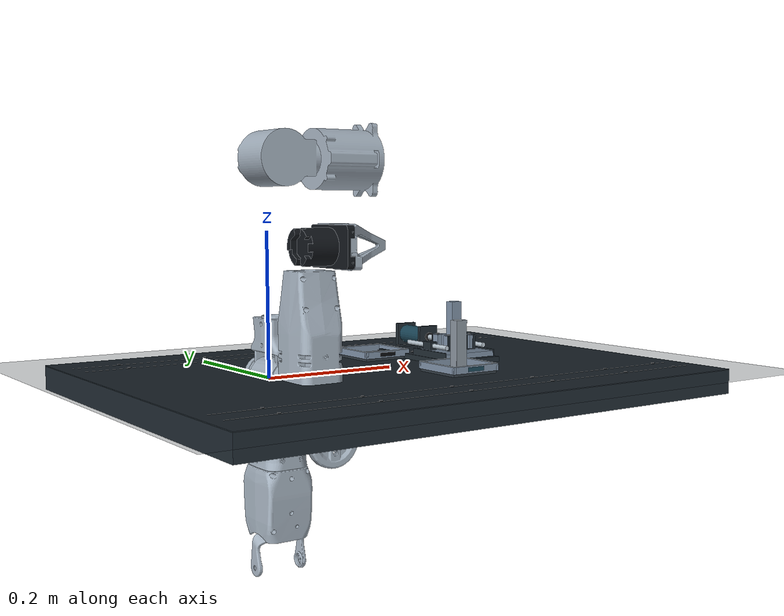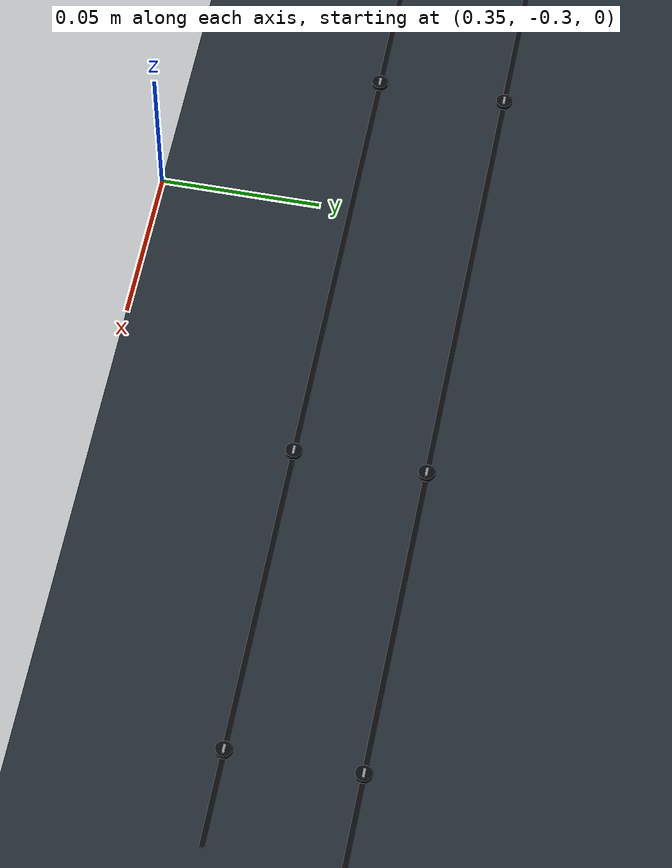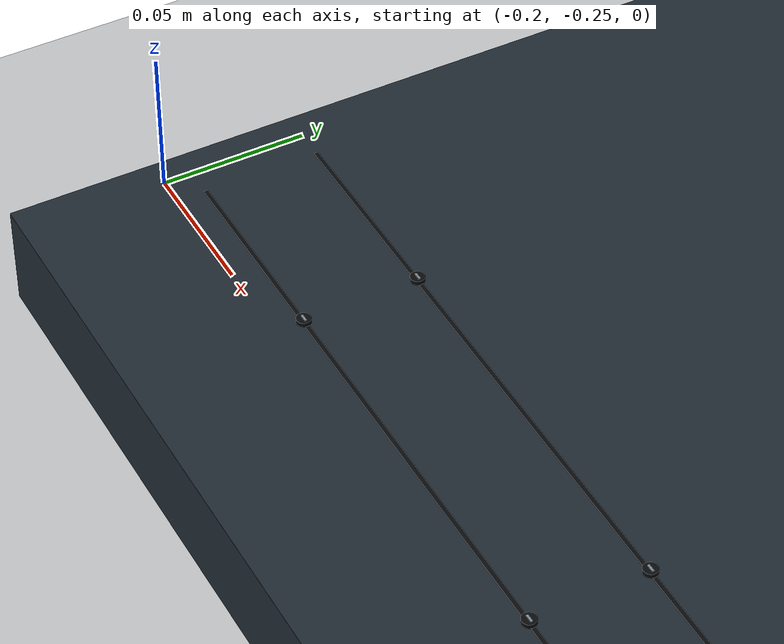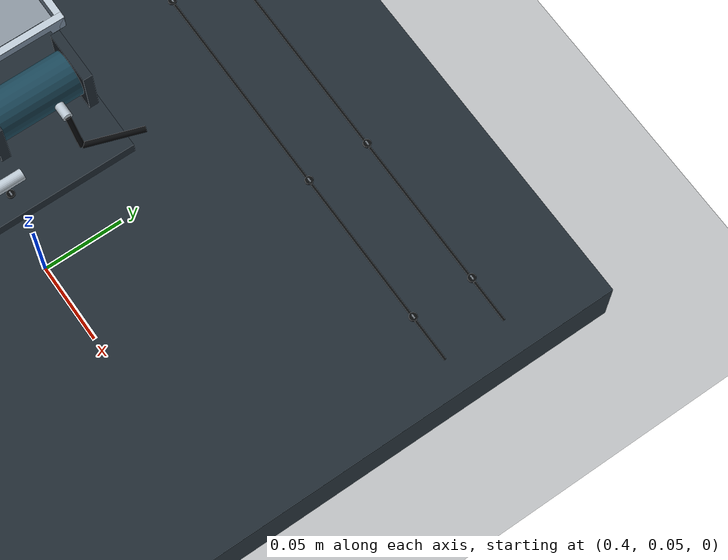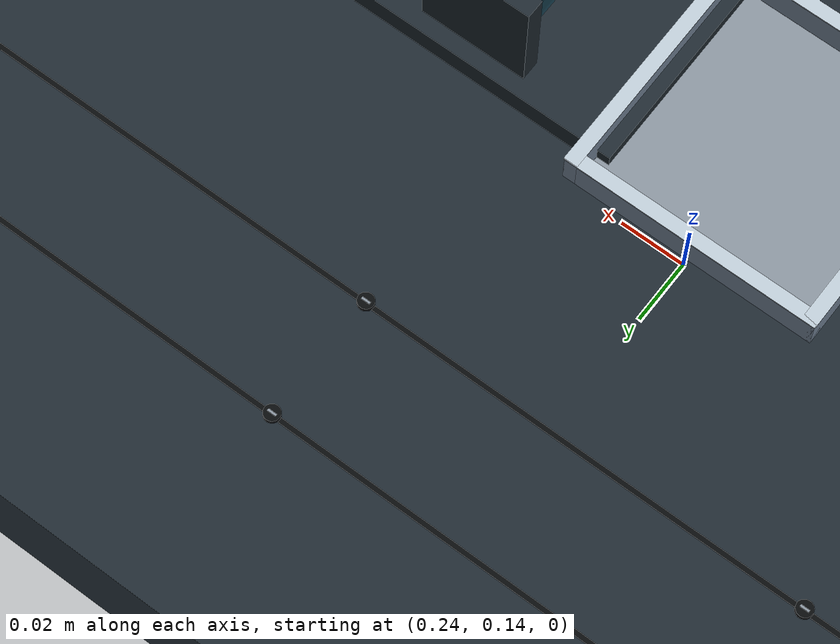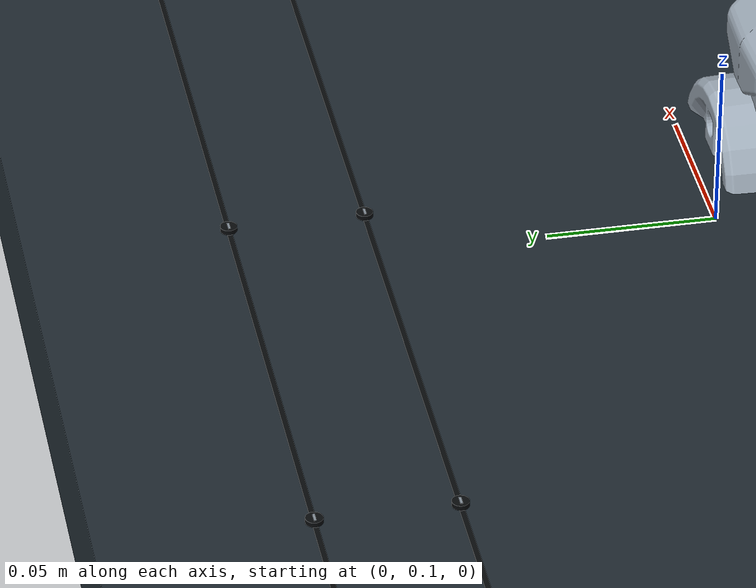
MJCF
<mujoco model="YAM two-stock machine tending with powered contact vise">
  <compiler angle="radian" />
  <asset>
    <mesh name="base" content_type="model/stl" file="../../assets/robots/yam/v1/assets/base.stl" />
    <mesh name="gripper" content_type="model/stl" file="../../assets/robots/yam/v1/assets/gripper.stl" />
    <mesh name="link1" content_type="model/stl" file="../../assets/robots/yam/v1/assets/link1.stl" />
    <mesh name="link2" content_type="model/stl" file="../../assets/robots/yam/v1/assets/link2.stl" />
    <mesh name="link3" content_type="model/stl" file="../../assets/robots/yam/v1/assets/link3.stl" />
    <mesh name="link4" content_type="model/stl" file="../../assets/robots/yam/v1/assets/link4.stl" />
    <mesh name="link5" content_type="model/stl" file="../../assets/robots/yam/v1/assets/link5.stl" />
    <mesh name="tip_left" content_type="model/stl" file="../../assets/robots/yam/v1/assets/tip_left.stl" />
    <mesh name="tip_right" content_type="model/stl" file="../../assets/robots/yam/v1/assets/tip_right.stl" />
    <mesh name="finger_left_0" file="../../assets/robots/yam/collision/tip_left_00.stl" />
    <mesh name="finger_left_1" file="../../assets/robots/yam/collision/tip_left_01.stl" />
    <mesh name="finger_left_2" file="../../assets/robots/yam/collision/tip_left_02.stl" />
    <mesh name="finger_left_3" file="../../assets/robots/yam/collision/tip_left_03.stl" />
    <mesh name="finger_left_4" file="../../assets/robots/yam/collision/tip_left_04.stl" />
    <mesh name="finger_left_5" file="../../assets/robots/yam/collision/tip_left_05.stl" />
    <mesh name="finger_left_6" file="../../assets/robots/yam/collision/tip_left_06.stl" />
    <mesh name="finger_left_7" file="../../assets/robots/yam/collision/tip_left_07.stl" />
    <mesh name="finger_left_8" file="../../assets/robots/yam/collision/tip_left_08.stl" />
    <mesh name="finger_left_9" file="../../assets/robots/yam/collision/tip_left_09.stl" />
    <mesh name="finger_left_10" file="../../assets/robots/yam/collision/tip_left_10.stl" />
    <mesh name="finger_left_11" file="../../assets/robots/yam/collision/tip_left_11.stl" />
    <mesh name="finger_left_12" file="../../assets/robots/yam/collision/tip_left_12.stl" />
    <mesh name="finger_left_13" file="../../assets/robots/yam/collision/tip_left_13.stl" />
    <mesh name="finger_left_14" file="../../assets/robots/yam/collision/tip_left_14.stl" />
    <mesh name="finger_left_15" file="../../assets/robots/yam/collision/tip_left_15.stl" />
    <mesh name="finger_left_16" file="../../assets/robots/yam/collision/tip_left_16.stl" />
    <mesh name="finger_left_17" file="../../assets/robots/yam/collision/tip_left_17.stl" />
    <mesh name="finger_left_18" file="../../assets/robots/yam/collision/tip_left_18.stl" />
    <mesh name="finger_left_19" file="../../assets/robots/yam/collision/tip_left_19.stl" />
    <mesh name="finger_left_20" file="../../assets/robots/yam/collision/tip_left_20.stl" />
    <mesh name="finger_left_21" file="../../assets/robots/yam/collision/tip_left_21.stl" />
    <mesh name="finger_left_22" file="../../assets/robots/yam/collision/tip_left_22.stl" />
    <mesh name="finger_left_23" file="../../assets/robots/yam/collision/tip_left_23.stl" />
    <mesh name="finger_right_0" file="../../assets/robots/yam/collision/tip_right_00.stl" />
    <mesh name="finger_right_1" file="../../assets/robots/yam/collision/tip_right_01.stl" />
    <mesh name="finger_right_2" file="../../assets/robots/yam/collision/tip_right_02.stl" />
    <mesh name="finger_right_3" file="../../assets/robots/yam/collision/tip_right_03.stl" />
    <mesh name="finger_right_4" file="../../assets/robots/yam/collision/tip_right_04.stl" />
    <mesh name="finger_right_5" file="../../assets/robots/yam/collision/tip_right_05.stl" />
    <mesh name="finger_right_6" file="../../assets/robots/yam/collision/tip_right_06.stl" />
    <mesh name="finger_right_7" file="../../assets/robots/yam/collision/tip_right_07.stl" />
    <mesh name="finger_right_8" file="../../assets/robots/yam/collision/tip_right_08.stl" />
    <mesh name="finger_right_9" file="../../assets/robots/yam/collision/tip_right_09.stl" />
    <mesh name="finger_right_10" file="../../assets/robots/yam/collision/tip_right_10.stl" />
    <mesh name="finger_right_11" file="../../assets/robots/yam/collision/tip_right_11.stl" />
    <mesh name="finger_right_12" file="../../assets/robots/yam/collision/tip_right_12.stl" />
    <mesh name="finger_right_13" file="../../assets/robots/yam/collision/tip_right_13.stl" />
    <mesh name="finger_right_14" file="../../assets/robots/yam/collision/tip_right_14.stl" />
    <mesh name="finger_right_15" file="../../assets/robots/yam/collision/tip_right_15.stl" />
    <mesh name="finger_right_16" file="../../assets/robots/yam/collision/tip_right_16.stl" />
    <mesh name="finger_right_17" file="../../assets/robots/yam/collision/tip_right_17.stl" />
    <mesh name="finger_right_18" file="../../assets/robots/yam/collision/tip_right_18.stl" />
    <mesh name="finger_right_19" file="../../assets/robots/yam/collision/tip_right_19.stl" />
    <mesh name="finger_right_20" file="../../assets/robots/yam/collision/tip_right_20.stl" />
    <mesh name="finger_right_21" file="../../assets/robots/yam/collision/tip_right_21.stl" />
    <mesh name="finger_right_22" file="../../assets/robots/yam/collision/tip_right_22.stl" />
    <mesh name="finger_right_23" file="../../assets/robots/yam/collision/tip_right_23.stl" />
    <texture name="studio_sky" type="skybox" builtin="gradient" rgb1=".72 .79 .86" rgb2=".94 .96 .98" width="512" height="3072" />
    <material name="studio_arm" rgba=".63 .68 .73 1" specular=".65" shininess=".65" reflectance=".03" />
    <material name="studio_dark" rgba=".07 .085 .105 1" specular=".3" shininess=".35" reflectance="0" />
    <material name="studio_socket" rgba=".48 .55 .63 1" specular=".75" shininess=".7" reflectance=".05" />
    <material name="studio_peg" rgba=".92 .47 .10 1" specular=".55" shininess=".6" reflectance=".02" />
    <material name="studio_bench" rgba=".18 .215 .245 1" specular=".2" shininess=".2" reflectance="0" />
    <material name="visual_steel" rgba=".52 .56 .60 1" specular=".65" shininess=".7" />
    <material name="visual_chrome" rgba=".72 .77 .81 1" specular=".65" shininess=".7" />
    <material name="visual_cast" rgba=".12 .16 .19 1" specular=".65" shininess=".7" />
    <material name="visual_black" rgba=".028 .035 .043 1" specular=".65" shininess=".7" />
    <material name="visual_blue" rgba=".10 .27 .34 1" specular=".65" shininess=".7" />
  </asset>
  <worldbody>
    <body name="base">
      <inertial pos="-3.83909e-05 2.40069e-05 0.0247678" quat="0.500738 0.500087 -0.499793 0.499381" mass="0.873654" diaginertia="0.00169404 0.00157059 0.000678306" />
      <geom pos="0.0374957 0.0464006 0.187501" quat="-1.29867e-06 -0.707108 -1.29868e-06 0.707105" type="mesh" contype="2" conaffinity="9" group="0" density="0" mesh="base" name="yam_geom_0" material="studio_arm" />
      <body name="link1" pos="-2.49778e-07 0 0.068" quat="-1.29867e-06 -0.707108 -1.29868e-06 0.707105">
        <inertial pos="-0.0233636 -0.00172503 -0.00727828" quat="0.350044 0.317088 -0.649919 0.595424" mass="0.101218" diaginertia="0.000134913 0.000106251 4.71815e-05" />
        <joint name="joint1" range="-2.61799 3.14159" actuatorfrcrange="-10 10" axis="-1 0 0" damping=".15" armature=".015" />
        <geom pos="-0.119501 -0.0464 -0.0374968" quat="1 0 0 0" type="mesh" contype="2" conaffinity="9" group="0" density="0" mesh="link1" name="yam_geom_1" material="studio_arm" />
        <body name="link2" pos="-0.0455 -0.0339 -0.02" quat="1.32679e-06 0 0 -1">
          <inertial pos="0.000134495 -0.0331253 0.129165" quat="1 0.000113256 1.56201e-05 -8.02079e-05" mass="1.46908" diaginertia="0.0146686 0.014599 0.000800088" />
          <joint name="joint2" range="0 3.66519" actuatorfrcrange="-10 10" axis="0 1 0" damping=".15" armature=".015" />
          <geom pos="-0.0740001 -0.08025 -0.0174977" quat="1 0 0 0" type="mesh" contype="2" conaffinity="9" group="0" density="0" mesh="link2" name="yam_geom_2" material="studio_arm" />
          <body name="link3" pos="4.08431e-07 -0.0688 0.264" quat="1.32679e-06 0 0 -1">
            <inertial pos="-0.0556042 -0.0340514 -0.135083" quat="0.990999 0.00518347 0.0472812 0.125137" mass="0.982553" diaginertia="0.00765198 0.0076296 0.000876442" />
            <joint name="joint3" range="0 3.14159" actuatorfrcrange="-10 10" axis="0 1 0" damping=".15" armature=".015" />
            <geom pos="-0.0740003 -0.0813 -0.281499" type="mesh" contype="2" conaffinity="9" group="0" density="0" mesh="link3" name="yam_geom_3" material="studio_arm" />
            <body name="link4" pos="-0.0600003 -0.0688 -0.244999" quat="1 0 0 0">
              <inertial pos="-0.0550959 0.032726 -0.0575534" quat="0.127536 0.44423 0.0147443 0.886666" mass="0.462165" diaginertia="0.000787888 0.00076643 0.00028779" />
              <joint name="joint4" range="-1.69297 1.5708" actuatorfrcrange="-10 10" axis="0 1 0" damping=".15" armature=".015" />
              <geom pos="-0.0140003 -0.0125 -0.0364989" quat="1 0 0 0" type="mesh" contype="2" conaffinity="9" group="0" density="0" mesh="link4" name="yam_geom_4" material="studio_arm" />
              <body name="link5" pos="-0.0405003 0.0338995 -0.0739989" quat="1 0 0 0">
                <inertial pos="0.0375847 -3.55003e-05 -0.000825911" quat="0.661372 -0.253166 -0.247107 0.661387" mass="0.403307" diaginertia="0.000219794 0.000195686 0.000169647" />
                <joint name="joint5" range="-1.5708 1.5708" actuatorfrcrange="-10 10" axis="1 0 0" damping=".15" armature=".015" />
                <geom pos="0.0265 -0.0463995 0.0375" quat="1 0 0 0" type="mesh" contype="2" conaffinity="9" group="0" density="0" mesh="link5" name="yam_geom_5" material="studio_arm" />
                <body name="gripper" pos="0.0404996 2.39858e-07 -0.0356" quat="1 0 0 0">
                  <inertial pos="-3.57064e-05 0.000249371 -0.0293133" quat="0.667981 0.744113 -0.0043308 0.00882784" mass="0.553219" diaginertia="0.000409687 0.000369758 0.000324415" />
                  <joint name="joint6" range="-2.0944 2.0944" actuatorfrcrange="-10 10" axis="0 0 -1" damping=".15" armature=".015" />
                  <geom pos="-0.014 -0.0463995 0.0731" quat="1 0 0 0" type="mesh" contype="2" conaffinity="9" group="0" density="0" mesh="gripper" name="yam_geom_6" material="studio_dark" />
                  <body name="tip_left" pos="-0.0239931 0.0445119 -0.0566829" quat="1 0 0 0">
                    <inertial pos="0.014584 -0.042586 -0.0228318" quat="0.80517 -0.425818 -0.124987 0.393393" mass="0.069657" diaginertia="6.18569e-05 5.94605e-05 2.79862e-05" />
                    <joint name="joint7" type="slide" range="-0.04695 0" actuatorfrcrange="-30 30" axis="0 1 0" damping="2" armature=".002" />
                    <geom pos="0.00999321 -0.0914614 0.129783" type="mesh" contype="0" conaffinity="0" group="0" density="0" mesh="tip_left" name="yam_geom_7" material="studio_arm" />
                    <geom pos="0.00999321 -0.0914614 0.129783" type="mesh" contype="4" conaffinity="9" group="3" density="0" mesh="finger_left_0" name="finger_left_0" friction="1.2 .005 .0001" material="studio_dark" />
                    <geom pos="0.00999321 -0.0914614 0.129783" type="mesh" contype="4" conaffinity="9" group="3" density="0" mesh="finger_left_1" name="finger_left_1" friction="1.2 .005 .0001" material="studio_dark" />
                    <geom pos="0.00999321 -0.0914614 0.129783" type="mesh" contype="4" conaffinity="9" group="3" density="0" mesh="finger_left_2" name="finger_left_2" friction="1.2 .005 .0001" material="studio_dark" />
                    <geom pos="0.00999321 -0.0914614 0.129783" type="mesh" contype="4" conaffinity="9" group="3" density="0" mesh="finger_left_3" name="finger_left_3" friction="1.2 .005 .0001" material="studio_dark" />
                    <geom pos="0.00999321 -0.0914614 0.129783" type="mesh" contype="4" conaffinity="9" group="3" density="0" mesh="finger_left_4" name="finger_left_4" friction="1.2 .005 .0001" material="studio_dark" />
                    <geom pos="0.00999321 -0.0914614 0.129783" type="mesh" contype="4" conaffinity="9" group="3" density="0" mesh="finger_left_5" name="finger_left_5" friction="1.2 .005 .0001" material="studio_dark" />
                    <geom pos="0.00999321 -0.0914614 0.129783" type="mesh" contype="4" conaffinity="9" group="3" density="0" mesh="finger_left_6" name="finger_left_6" friction="1.2 .005 .0001" material="studio_dark" />
                    <geom pos="0.00999321 -0.0914614 0.129783" type="mesh" contype="4" conaffinity="9" group="3" density="0" mesh="finger_left_7" name="finger_left_7" friction="1.2 .005 .0001" material="studio_dark" />
                    <geom pos="0.00999321 -0.0914614 0.129783" type="mesh" contype="4" conaffinity="9" group="3" density="0" mesh="finger_left_8" name="finger_left_8" friction="1.2 .005 .0001" material="studio_dark" />
                    <geom pos="0.00999321 -0.0914614 0.129783" type="mesh" contype="4" conaffinity="9" group="3" density="0" mesh="finger_left_9" name="finger_left_9" friction="1.2 .005 .0001" material="studio_dark" />
                    <geom pos="0.00999321 -0.0914614 0.129783" type="mesh" contype="4" conaffinity="9" group="3" density="0" mesh="finger_left_10" name="finger_left_10" friction="1.2 .005 .0001" material="studio_dark" />
                    <geom pos="0.00999321 -0.0914614 0.129783" type="mesh" contype="4" conaffinity="9" group="3" density="0" mesh="finger_left_11" name="finger_left_11" friction="1.2 .005 .0001" material="studio_dark" />
                    <geom pos="0.00999321 -0.0914614 0.129783" type="mesh" contype="4" conaffinity="9" group="3" density="0" mesh="finger_left_12" name="finger_left_12" friction="1.2 .005 .0001" material="studio_dark" />
                    <geom pos="0.00999321 -0.0914614 0.129783" type="mesh" contype="4" conaffinity="9" group="3" density="0" mesh="finger_left_13" name="finger_left_13" friction="1.2 .005 .0001" material="studio_dark" />
                    <geom pos="0.00999321 -0.0914614 0.129783" type="mesh" contype="4" conaffinity="9" group="3" density="0" mesh="finger_left_14" name="finger_left_14" friction="1.2 .005 .0001" material="studio_dark" />
                    <geom pos="0.00999321 -0.0914614 0.129783" type="mesh" contype="4" conaffinity="9" group="3" density="0" mesh="finger_left_15" name="finger_left_15" friction="1.2 .005 .0001" material="studio_dark" />
                    <geom pos="0.00999321 -0.0914614 0.129783" type="mesh" contype="4" conaffinity="9" group="3" density="0" mesh="finger_left_16" name="finger_left_16" friction="1.2 .005 .0001" material="studio_dark" />
                    <geom pos="0.00999321 -0.0914614 0.129783" type="mesh" contype="4" conaffinity="9" group="3" density="0" mesh="finger_left_17" name="finger_left_17" friction="1.2 .005 .0001" material="studio_dark" />
                    <geom pos="0.00999321 -0.0914614 0.129783" type="mesh" contype="4" conaffinity="9" group="3" density="0" mesh="finger_left_18" name="finger_left_18" friction="1.2 .005 .0001" material="studio_dark" />
                    <geom pos="0.00999321 -0.0914614 0.129783" type="mesh" contype="4" conaffinity="9" group="3" density="0" mesh="finger_left_19" name="finger_left_19" friction="1.2 .005 .0001" material="studio_dark" />
                    <geom pos="0.00999321 -0.0914614 0.129783" type="mesh" contype="4" conaffinity="9" group="3" density="0" mesh="finger_left_20" name="finger_left_20" friction="1.2 .005 .0001" material="studio_dark" />
                    <geom pos="0.00999321 -0.0914614 0.129783" type="mesh" contype="4" conaffinity="9" group="3" density="0" mesh="finger_left_21" name="finger_left_21" friction="1.2 .005 .0001" material="studio_dark" />
                    <geom pos="0.00999321 -0.0914614 0.129783" type="mesh" contype="4" conaffinity="9" group="3" density="0" mesh="finger_left_22" name="finger_left_22" friction="1.2 .005 .0001" material="studio_dark" />
                    <geom pos="0.00999321 -0.0914614 0.129783" type="mesh" contype="4" conaffinity="9" group="3" density="0" mesh="finger_left_23" name="finger_left_23" friction="1.2 .005 .0001" material="studio_dark" />
                  </body>
                  <body name="tip_right" pos="0.0239931 -0.0445119 -0.0566829" quat="1 0 0 0">
                    <inertial pos="-0.014584 0.042586 -0.0228318" quat="0.80517 0.425818 0.124987 0.393393" mass="0.069657" diaginertia="6.18569e-05 5.94605e-05 2.79862e-05" />
                    <joint name="joint8" type="slide" range="-0.04695 0" actuatorfrcrange="-30 30" axis="0 -1 0" damping="2" armature=".002" />
                    <geom pos="-0.0379932 -0.00133753 0.129783" quat="1 0 0 0" type="mesh" contype="0" conaffinity="0" group="0" density="0" mesh="tip_right" name="yam_geom_8" material="studio_arm" />
                    <geom pos="-0.0379932 -0.00133753 0.129783" quat="1 0 0 0" type="mesh" contype="4" conaffinity="9" group="3" density="0" mesh="finger_right_0" name="finger_right_0" friction="1.2 .005 .0001" material="studio_dark" />
                    <geom pos="-0.0379932 -0.00133753 0.129783" quat="1 0 0 0" type="mesh" contype="4" conaffinity="9" group="3" density="0" mesh="finger_right_1" name="finger_right_1" friction="1.2 .005 .0001" material="studio_dark" />
                    <geom pos="-0.0379932 -0.00133753 0.129783" quat="1 0 0 0" type="mesh" contype="4" conaffinity="9" group="3" density="0" mesh="finger_right_2" name="finger_right_2" friction="1.2 .005 .0001" material="studio_dark" />
                    <geom pos="-0.0379932 -0.00133753 0.129783" quat="1 0 0 0" type="mesh" contype="4" conaffinity="9" group="3" density="0" mesh="finger_right_3" name="finger_right_3" friction="1.2 .005 .0001" material="studio_dark" />
                    <geom pos="-0.0379932 -0.00133753 0.129783" quat="1 0 0 0" type="mesh" contype="4" conaffinity="9" group="3" density="0" mesh="finger_right_4" name="finger_right_4" friction="1.2 .005 .0001" material="studio_dark" />
                    <geom pos="-0.0379932 -0.00133753 0.129783" quat="1 0 0 0" type="mesh" contype="4" conaffinity="9" group="3" density="0" mesh="finger_right_5" name="finger_right_5" friction="1.2 .005 .0001" material="studio_dark" />
                    <geom pos="-0.0379932 -0.00133753 0.129783" quat="1 0 0 0" type="mesh" contype="4" conaffinity="9" group="3" density="0" mesh="finger_right_6" name="finger_right_6" friction="1.2 .005 .0001" material="studio_dark" />
                    <geom pos="-0.0379932 -0.00133753 0.129783" quat="1 0 0 0" type="mesh" contype="4" conaffinity="9" group="3" density="0" mesh="finger_right_7" name="finger_right_7" friction="1.2 .005 .0001" material="studio_dark" />
                    <geom pos="-0.0379932 -0.00133753 0.129783" quat="1 0 0 0" type="mesh" contype="4" conaffinity="9" group="3" density="0" mesh="finger_right_8" name="finger_right_8" friction="1.2 .005 .0001" material="studio_dark" />
                    <geom pos="-0.0379932 -0.00133753 0.129783" quat="1 0 0 0" type="mesh" contype="4" conaffinity="9" group="3" density="0" mesh="finger_right_9" name="finger_right_9" friction="1.2 .005 .0001" material="studio_dark" />
                    <geom pos="-0.0379932 -0.00133753 0.129783" quat="1 0 0 0" type="mesh" contype="4" conaffinity="9" group="3" density="0" mesh="finger_right_10" name="finger_right_10" friction="1.2 .005 .0001" material="studio_dark" />
                    <geom pos="-0.0379932 -0.00133753 0.129783" quat="1 0 0 0" type="mesh" contype="4" conaffinity="9" group="3" density="0" mesh="finger_right_11" name="finger_right_11" friction="1.2 .005 .0001" material="studio_dark" />
                    <geom pos="-0.0379932 -0.00133753 0.129783" quat="1 0 0 0" type="mesh" contype="4" conaffinity="9" group="3" density="0" mesh="finger_right_12" name="finger_right_12" friction="1.2 .005 .0001" material="studio_dark" />
                    <geom pos="-0.0379932 -0.00133753 0.129783" quat="1 0 0 0" type="mesh" contype="4" conaffinity="9" group="3" density="0" mesh="finger_right_13" name="finger_right_13" friction="1.2 .005 .0001" material="studio_dark" />
                    <geom pos="-0.0379932 -0.00133753 0.129783" quat="1 0 0 0" type="mesh" contype="4" conaffinity="9" group="3" density="0" mesh="finger_right_14" name="finger_right_14" friction="1.2 .005 .0001" material="studio_dark" />
                    <geom pos="-0.0379932 -0.00133753 0.129783" quat="1 0 0 0" type="mesh" contype="4" conaffinity="9" group="3" density="0" mesh="finger_right_15" name="finger_right_15" friction="1.2 .005 .0001" material="studio_dark" />
                    <geom pos="-0.0379932 -0.00133753 0.129783" quat="1 0 0 0" type="mesh" contype="4" conaffinity="9" group="3" density="0" mesh="finger_right_16" name="finger_right_16" friction="1.2 .005 .0001" material="studio_dark" />
                    <geom pos="-0.0379932 -0.00133753 0.129783" quat="1 0 0 0" type="mesh" contype="4" conaffinity="9" group="3" density="0" mesh="finger_right_17" name="finger_right_17" friction="1.2 .005 .0001" material="studio_dark" />
                    <geom pos="-0.0379932 -0.00133753 0.129783" quat="1 0 0 0" type="mesh" contype="4" conaffinity="9" group="3" density="0" mesh="finger_right_18" name="finger_right_18" friction="1.2 .005 .0001" material="studio_dark" />
                    <geom pos="-0.0379932 -0.00133753 0.129783" quat="1 0 0 0" type="mesh" contype="4" conaffinity="9" group="3" density="0" mesh="finger_right_19" name="finger_right_19" friction="1.2 .005 .0001" material="studio_dark" />
                    <geom pos="-0.0379932 -0.00133753 0.129783" quat="1 0 0 0" type="mesh" contype="4" conaffinity="9" group="3" density="0" mesh="finger_right_20" name="finger_right_20" friction="1.2 .005 .0001" material="studio_dark" />
                    <geom pos="-0.0379932 -0.00133753 0.129783" quat="1 0 0 0" type="mesh" contype="4" conaffinity="9" group="3" density="0" mesh="finger_right_21" name="finger_right_21" friction="1.2 .005 .0001" material="studio_dark" />
                    <geom pos="-0.0379932 -0.00133753 0.129783" quat="1 0 0 0" type="mesh" contype="4" conaffinity="9" group="3" density="0" mesh="finger_right_22" name="finger_right_22" friction="1.2 .005 .0001" material="studio_dark" />
                    <geom pos="-0.0379932 -0.00133753 0.129783" quat="1 0 0 0" type="mesh" contype="4" conaffinity="9" group="3" density="0" mesh="finger_right_23" name="finger_right_23" friction="1.2 .005 .0001" material="studio_dark" />
                  </body>
                  <site name="tool_tip" pos="0 0 -.13" size=".003" rgba="1 .2 .1 0" />
                </body>
              </body>
            </body>
          </body>
        </body>
      </body>
    </body>
    <geom name="bench" type="plane" size=".7 .7 .02" contype="1" conaffinity="14" material="studio_bench" />
    <light name="studio_key" pos=".2 -.6 1.4" dir="0 .35 -1" diffuse=".8 .78 .73" specular=".8 .8 .8" castshadow="true" directional="true" />
    <light name="studio_fill" pos="-.4 .4 .8" dir=".5 -.3 -.8" diffuse=".36 .43 .52" specular=".25 .3 .4" castshadow="false" directional="true" />
    <light name="studio_rim" pos=".8 .5 1" dir="-.4 -.4 -1" diffuse=".42 .45 .5" specular=".6 .6 .6" castshadow="false" directional="true" />
    <camera name="overview" pos="0.95 -1.05 0.82" xyaxes="0.8210645514674284 0.5708353548297359 -0.0 -0.2522652932793071 0.3628473396483184 0.8970529694041725" fovy="38" />
    <camera name="insertion" pos="0.54 -0.3 0.28" xyaxes="0.8064049958557055 0.5913636636275175 -0.0 -0.31582156599663325 0.43066577181359067 0.8454488343120701" fovy="38" />
    <body name="raw_tray" pos=".25 -.10 0">
      <geom name="raw_tray_floor" type="box" pos="0 0 .002" size=".038 .038 .002" contype="1" conaffinity="14" material="studio_bench" />
      <geom name="raw_tray_wall0_-1" type="box" pos="-0.038 0.0 0.009" size="0.002 0.04 0.005" contype="1" conaffinity="14" material="studio_socket" />
      <geom name="raw_tray_wall0_1" type="box" pos="0.038 0.0 0.009" size="0.002 0.04 0.005" contype="1" conaffinity="14" material="studio_socket" />
      <geom name="raw_tray_wall1_-1" type="box" pos="0.0 -0.038 0.009" size="0.04 0.002 0.005" contype="1" conaffinity="14" material="studio_socket" />
      <geom name="raw_tray_wall1_1" type="box" pos="0.0 0.038 0.009" size="0.04 0.002 0.005" contype="1" conaffinity="14" material="studio_socket" />
      <geom name="visual_raw_tray_liner" type="box" material="visual_steel" contype="0" conaffinity="0" mass="0" group="0" pos="0 0 0.00405" size="0.0359 0.0359 5e-05" />
      <geom name="visual_raw_tray_rimx-0.038" type="box" material="visual_chrome" contype="0" conaffinity="0" mass="0" group="0" pos="-0.038 0 0.0141" size="0.0022 0.04 0.0002" />
      <geom name="visual_raw_tray_rimx0.038" type="box" material="visual_chrome" contype="0" conaffinity="0" mass="0" group="0" pos="0.038 0 0.0141" size="0.0022 0.04 0.0002" />
      <geom name="visual_raw_tray_rimy-0.038" type="box" material="visual_chrome" contype="0" conaffinity="0" mass="0" group="0" pos="0 -0.038 0.0141" size="0.04 0.0022 0.0002" />
      <geom name="visual_raw_tray_rimy0.038" type="box" material="visual_chrome" contype="0" conaffinity="0" mass="0" group="0" pos="0 0.038 0.0141" size="0.04 0.0022 0.0002" />
      <geom name="visual_raw_tray_rivet-0.035_-0.035" type="cylinder" material="visual_black" contype="0" conaffinity="0" mass="0" group="0" fromto="-0.035 -0.035 0.0042 -0.035 -0.035 0.0057" size="0.0025" />
      <geom name="visual_raw_tray_rivet-0.035_-0.035_slot" type="box" material="visual_steel" contype="0" conaffinity="0" mass="0" group="0" pos="-0.035 -0.035 0.00575" size="0.0014 0.00035 0.0001" />
      <geom name="visual_raw_tray_rivet-0.035_0.035" type="cylinder" material="visual_black" contype="0" conaffinity="0" mass="0" group="0" fromto="-0.035 0.035 0.0042 -0.035 0.035 0.0057" size="0.0025" />
      <geom name="visual_raw_tray_rivet-0.035_0.035_slot" type="box" material="visual_steel" contype="0" conaffinity="0" mass="0" group="0" pos="-0.035 0.035 0.00575" size="0.0014 0.00035 0.0001" />
      <geom name="visual_raw_tray_rivet0.035_-0.035" type="cylinder" material="visual_black" contype="0" conaffinity="0" mass="0" group="0" fromto="0.035 -0.035 0.0042 0.035 -0.035 0.0057" size="0.0025" />
      <geom name="visual_raw_tray_rivet0.035_-0.035_slot" type="box" material="visual_steel" contype="0" conaffinity="0" mass="0" group="0" pos="0.035 -0.035 0.00575" size="0.0014 0.00035 0.0001" />
      <geom name="visual_raw_tray_rivet0.035_0.035" type="cylinder" material="visual_black" contype="0" conaffinity="0" mass="0" group="0" fromto="0.035 0.035 0.0042 0.035 0.035 0.0057" size="0.0025" />
      <geom name="visual_raw_tray_rivet0.035_0.035_slot" type="box" material="visual_steel" contype="0" conaffinity="0" mass="0" group="0" pos="0.035 0.035 0.00575" size="0.0014 0.00035 0.0001" />
      <geom name="visual_raw_tray_label" type="box" material="visual_blue" contype="0" conaffinity="0" mass="0" group="0" pos="0 -0.0401 0.009" size="0.014 0.00015 0.003" />
    </body>
    <body name="output_tray" pos=".24 .10 0">
      <geom name="output_tray_floor" type="box" pos="0 0 .002" size=".038 .038 .002" contype="1" conaffinity="14" material="studio_bench" />
      <geom name="output_tray_wall0_-1" type="box" pos="-0.038 0.0 0.009" size="0.002 0.04 0.005" contype="1" conaffinity="14" material="studio_socket" />
      <geom name="output_tray_wall0_1" type="box" pos="0.038 0.0 0.009" size="0.002 0.04 0.005" contype="1" conaffinity="14" material="studio_socket" />
      <geom name="output_tray_wall1_-1" type="box" pos="0.0 -0.038 0.009" size="0.04 0.002 0.005" contype="1" conaffinity="14" material="studio_socket" />
      <geom name="output_tray_wall1_1" type="box" pos="0.0 0.038 0.009" size="0.04 0.002 0.005" contype="1" conaffinity="14" material="studio_socket" />
      <geom name="visual_output_tray_liner" type="box" material="visual_steel" contype="0" conaffinity="0" mass="0" group="0" pos="0 0 0.00405" size="0.0359 0.0359 5e-05" />
      <geom name="visual_output_tray_rimx-0.038" type="box" material="visual_chrome" contype="0" conaffinity="0" mass="0" group="0" pos="-0.038 0 0.0141" size="0.0022 0.04 0.0002" />
      <geom name="visual_output_tray_rimx0.038" type="box" material="visual_chrome" contype="0" conaffinity="0" mass="0" group="0" pos="0.038 0 0.0141" size="0.0022 0.04 0.0002" />
      <geom name="visual_output_tray_rimy-0.038" type="box" material="visual_chrome" contype="0" conaffinity="0" mass="0" group="0" pos="0 -0.038 0.0141" size="0.04 0.0022 0.0002" />
      <geom name="visual_output_tray_rimy0.038" type="box" material="visual_chrome" contype="0" conaffinity="0" mass="0" group="0" pos="0 0.038 0.0141" size="0.04 0.0022 0.0002" />
      <geom name="visual_output_tray_rivet-0.035_-0.035" type="cylinder" material="visual_black" contype="0" conaffinity="0" mass="0" group="0" fromto="-0.035 -0.035 0.0042 -0.035 -0.035 0.0057" size="0.0025" />
      <geom name="visual_output_tray_rivet-0.035_-0.035_slot" type="box" material="visual_steel" contype="0" conaffinity="0" mass="0" group="0" pos="-0.035 -0.035 0.00575" size="0.0014 0.00035 0.0001" />
      <geom name="visual_output_tray_rivet-0.035_0.035" type="cylinder" material="visual_black" contype="0" conaffinity="0" mass="0" group="0" fromto="-0.035 0.035 0.0042 -0.035 0.035 0.0057" size="0.0025" />
      <geom name="visual_output_tray_rivet-0.035_0.035_slot" type="box" material="visual_steel" contype="0" conaffinity="0" mass="0" group="0" pos="-0.035 0.035 0.00575" size="0.0014 0.00035 0.0001" />
      <geom name="visual_output_tray_rivet0.035_-0.035" type="cylinder" material="visual_black" contype="0" conaffinity="0" mass="0" group="0" fromto="0.035 -0.035 0.0042 0.035 -0.035 0.0057" size="0.0025" />
      <geom name="visual_output_tray_rivet0.035_-0.035_slot" type="box" material="visual_steel" contype="0" conaffinity="0" mass="0" group="0" pos="0.035 -0.035 0.00575" size="0.0014 0.00035 0.0001" />
      <geom name="visual_output_tray_rivet0.035_0.035" type="cylinder" material="visual_black" contype="0" conaffinity="0" mass="0" group="0" fromto="0.035 0.035 0.0042 0.035 0.035 0.0057" size="0.0025" />
      <geom name="visual_output_tray_rivet0.035_0.035_slot" type="box" material="visual_steel" contype="0" conaffinity="0" mass="0" group="0" pos="0.035 0.035 0.00575" size="0.0014 0.00035 0.0001" />
      <geom name="visual_output_tray_label" type="box" material="visual_black" contype="0" conaffinity="0" mass="0" group="0" pos="0 -0.0401 0.009" size="0.014 0.00015 0.003" />
    </body>
    <body name="vise" pos=".32 0 0">
      <geom name="vise_base" type="box" pos="0 0 .008" size=".045 .040 .008" contype="1" conaffinity="14" material="studio_socket" />
      <geom name="vise_seat" type="box" pos="0 0 .018" size=".014 .011 .002" contype="1" conaffinity="14" material="studio_bench" />
      <geom name="vise_fixed_jaw" type="box" pos="0 -.013 .030" size=".025 .006 .010" contype="1" conaffinity="14" material="studio_socket" />
      <geom name="vise_endstop-1" type="box" pos="-0.014 0 .030" size=".003 .025 .010" contype="1" conaffinity="14" material="studio_socket" />
      <geom name="vise_endstop1" type="box" pos="0.014 0 .030" size=".003 .025 .010" contype="1" conaffinity="14" material="studio_socket" />
      <body name="vise_slider" pos="0 .013 .030">
        <joint name="vise_joint" type="slide" axis="0 1 0" range="-.002 .026" damping="2" armature=".005" />
        <inertial pos="0 0 0" mass=".12" diaginertia=".00003 .00003 .00003" />
        <geom name="vise_moving_jaw" type="box" pos="0 0 0" size=".025 .006 .010" contype="1" conaffinity="14" material="studio_socket" />
        <geom name="visual_bearing_-0.035" type="box" material="visual_cast" contype="0" conaffinity="0" mass="0" group="0" pos="-0.035 0 -0.006" size="0.006 0.01 0.006" />
        <geom name="visual_bearing_0.035" type="box" material="visual_cast" contype="0" conaffinity="0" mass="0" group="0" pos="0.035 0 -0.006" size="0.006 0.01 0.006" />
        <geom name="visual_piston_rod" type="cylinder" material="visual_chrome" contype="0" conaffinity="0" mass="0" group="0" fromto="0 0.005 0 0 0.085 0" size="0.004" />
        <geom name="visual_jaw_carrier" type="box" material="visual_cast" contype="0" conaffinity="0" mass="0" group="0" pos="0 0.0065 -0.001" size="0.026 0.001 0.01" />
        <geom name="visual_moving_jaw_bolt-0.02" type="cylinder" material="visual_black" contype="0" conaffinity="0" mass="0" group="0" fromto="-0.02 0 0.0102 -0.02 0 0.0117" size="0.0025" />
        <geom name="visual_moving_jaw_bolt-0.02_slot" type="box" material="visual_steel" contype="0" conaffinity="0" mass="0" group="0" pos="-0.02 0 0.01175" size="0.0014 0.00035 0.0001" />
        <geom name="visual_moving_jaw_bolt0.02" type="cylinder" material="visual_black" contype="0" conaffinity="0" mass="0" group="0" fromto="0.02 0 0.0102 0.02 0 0.0117" size="0.0025" />
        <geom name="visual_moving_jaw_bolt0.02_slot" type="box" material="visual_steel" contype="0" conaffinity="0" mass="0" group="0" pos="0.02 0 0.01175" size="0.0014 0.00035 0.0001" />
      </body>
      <geom name="visual_vise_lower_plate" type="box" material="visual_cast" contype="0" conaffinity="0" mass="0" group="0" pos="0 0.04 0.004" size="0.048 0.09 0.004" />
      <geom name="visual_base_side-0.0455" type="box" material="visual_cast" contype="0" conaffinity="0" mass="0" group="0" pos="-0.0455 0 0.011" size="0.001 0.04 0.007" />
      <geom name="visual_base_side0.0455" type="box" material="visual_cast" contype="0" conaffinity="0" mass="0" group="0" pos="0.0455 0 0.011" size="0.001 0.04 0.007" />
      <geom name="visual_guide_-0.035" type="cylinder" material="visual_chrome" contype="0" conaffinity="0" mass="0" group="0" fromto="-0.035 -0.029 0.024 -0.035 0.067 0.024" size="0.0035" />
      <geom name="visual_mount_-0.035_-0.03" type="cylinder" material="visual_black" contype="0" conaffinity="0" mass="0" group="0" fromto="-0.035 -0.03 0.009 -0.035 -0.03 0.010499999999999999" size="0.0025" />
      <geom name="visual_mount_-0.035_-0.03_slot" type="box" material="visual_steel" contype="0" conaffinity="0" mass="0" group="0" pos="-0.035 -0.03 0.010549999999999999" size="0.0014 0.00035 0.0001" />
      <geom name="visual_mount_-0.035_0.057" type="cylinder" material="visual_black" contype="0" conaffinity="0" mass="0" group="0" fromto="-0.035 0.057 0.009 -0.035 0.057 0.010499999999999999" size="0.0025" />
      <geom name="visual_mount_-0.035_0.057_slot" type="box" material="visual_steel" contype="0" conaffinity="0" mass="0" group="0" pos="-0.035 0.057 0.010549999999999999" size="0.0014 0.00035 0.0001" />
      <geom name="visual_guide_0.035" type="cylinder" material="visual_chrome" contype="0" conaffinity="0" mass="0" group="0" fromto="0.035 -0.029 0.024 0.035 0.067 0.024" size="0.0035" />
      <geom name="visual_mount_0.035_-0.03" type="cylinder" material="visual_black" contype="0" conaffinity="0" mass="0" group="0" fromto="0.035 -0.03 0.009 0.035 -0.03 0.010499999999999999" size="0.0025" />
      <geom name="visual_mount_0.035_-0.03_slot" type="box" material="visual_steel" contype="0" conaffinity="0" mass="0" group="0" pos="0.035 -0.03 0.010549999999999999" size="0.0014 0.00035 0.0001" />
      <geom name="visual_mount_0.035_0.057" type="cylinder" material="visual_black" contype="0" conaffinity="0" mass="0" group="0" fromto="0.035 0.057 0.009 0.035 0.057 0.010499999999999999" size="0.0025" />
      <geom name="visual_mount_0.035_0.057_slot" type="box" material="visual_steel" contype="0" conaffinity="0" mass="0" group="0" pos="0.035 0.057 0.010549999999999999" size="0.0014 0.00035 0.0001" />
      <geom name="visual_actuator_barrel" type="cylinder" material="visual_blue" contype="0" conaffinity="0" mass="0" group="0" fromto="0 0.069 0.03 0 0.125 0.03" size="0.014" />
      <geom name="visual_actuator_cap_0.066" type="box" material="visual_cast" contype="0" conaffinity="0" mass="0" group="0" pos="0 0.066 0.03" size="0.017 0.003 0.017" />
      <geom name="visual_actuator_cap_0.124" type="box" material="visual_cast" contype="0" conaffinity="0" mass="0" group="0" pos="0 0.124 0.03" size="0.017 0.003 0.017" />
      <geom name="visual_rod_seal" type="cylinder" material="visual_black" contype="0" conaffinity="0" mass="0" group="0" fromto="0 0.06 0.03 0 0.064 0.03" size="0.007" />
      <geom name="visual_fixed_carrier" type="box" material="visual_cast" contype="0" conaffinity="0" mass="0" group="0" pos="0 -0.0195 0.029" size="0.026 0.001 0.011" />
      <geom name="visual_fixed_jaw_bolt-0.02" type="cylinder" material="visual_black" contype="0" conaffinity="0" mass="0" group="0" fromto="-0.02 -0.013 0.0402 -0.02 -0.013 0.0417" size="0.0025" />
      <geom name="visual_fixed_jaw_bolt-0.02_slot" type="box" material="visual_steel" contype="0" conaffinity="0" mass="0" group="0" pos="-0.02 -0.013 0.04175" size="0.0014 0.00035 0.0001" />
      <geom name="visual_fixed_jaw_bolt0.02" type="cylinder" material="visual_black" contype="0" conaffinity="0" mass="0" group="0" fromto="0.02 -0.013 0.0402 0.02 -0.013 0.0417" size="0.0025" />
      <geom name="visual_fixed_jaw_bolt0.02_slot" type="box" material="visual_steel" contype="0" conaffinity="0" mass="0" group="0" pos="0.02 -0.013 0.04175" size="0.0014 0.00035 0.0001" />
      <geom name="visual_service_port" type="cylinder" material="visual_chrome" contype="0" conaffinity="0" mass="0" group="0" fromto="0.014 0.105 0.03 0.023 0.105 0.03" size="0.003" />
      <geom name="visual_service_lineA" type="cylinder" material="visual_black" contype="0" conaffinity="0" mass="0" group="0" fromto="0.023 0.105 0.03 0.034 0.105 0.013" size="0.0018" />
      <geom name="visual_service_lineB" type="cylinder" material="visual_black" contype="0" conaffinity="0" mass="0" group="0" fromto="0.034 0.105 0.013 0.046 0.14 0.013" size="0.0018" />
    </body>
    <body name="free_peg" pos=".25 -.10 .0041" quat="0 0 0 1">
      <freejoint name="peg_free" />
      <inertial pos="0 0 .035" mass=".04" diaginertia=".00001699 .00001741 .000001733" />
      <geom name="peg" type="box" pos="0 0 .035" size=".009 .007 .035" contype="8" conaffinity="15" friction="1.2 .005 .0001" material="studio_peg" />
      <site name="peg_tip" pos="0 0 0" size=".002" rgba="1 0 0 0" />
      <geom name="visual_raw_face_x-0.00905" type="box" material="visual_steel" contype="0" conaffinity="0" mass="0" group="0" pos="-0.00905 0 0.035" size="5e-05 0.007 0.035" />
      <geom name="visual_raw_face_x0.00905" type="box" material="visual_steel" contype="0" conaffinity="0" mass="0" group="0" pos="0.00905 0 0.035" size="5e-05 0.007 0.035" />
      <geom name="visual_raw_face_y-0.00705" type="box" material="visual_steel" contype="0" conaffinity="0" mass="0" group="0" pos="0 -0.00705 0.035" size="0.009 5e-05 0.035" />
      <geom name="visual_raw_face_y0.00705" type="box" material="visual_steel" contype="0" conaffinity="0" mass="0" group="0" pos="0 0.00705 0.035" size="0.009 5e-05 0.035" />
      <geom name="visual_raw_top" type="box" material="visual_chrome" contype="0" conaffinity="0" mass="0" group="0" pos="0 0 0.07005" size="0.009 0.007 5e-05" />
    </body>
    <body name="finished_stock" pos=".32 0 .0201" quat="0 0 0 1">
      <freejoint name="finished_free" />
      <inertial pos="0 0 .035" mass=".04" diaginertia=".00001699 .00001741 .000001733" />
      <geom name="finished_part" type="box" pos="0 0 .035" size=".009 .007 .035" contype="8" conaffinity="15" friction="1.2 .005 .0001" material="studio_socket" />
      <site name="finished_tip" pos="0 0 0" size=".002" rgba="1 0 0 0" />
    </body>
    <geom name="visual_worktop" type="box" material="visual_cast" contype="0" conaffinity="0" mass="0" group="0" pos="0.19 0 -0.018" size="0.4 0.3 0.018" />
    <geom name="visual_slot_-0.24" type="box" material="visual_black" contype="0" conaffinity="0" mass="0" group="0" pos="0.19 -0.24 0.0001" size="0.38 0.0008 0.0001" />
    <geom name="visual_slot_-0.2" type="box" material="visual_black" contype="0" conaffinity="0" mass="0" group="0" pos="0.19 -0.2 0.0001" size="0.38 0.0008 0.0001" />
    <geom name="visual_slot_0.2" type="box" material="visual_black" contype="0" conaffinity="0" mass="0" group="0" pos="0.19 0.2 0.0001" size="0.38 0.0008 0.0001" />
    <geom name="visual_slot_0.24" type="box" material="visual_black" contype="0" conaffinity="0" mass="0" group="0" pos="0.19 0.24 0.0001" size="0.38 0.0008 0.0001" />
    <geom name="visual_table_-0.12_-0.24" type="cylinder" material="visual_black" contype="0" conaffinity="0" mass="0" group="0" fromto="-0.12 -0.24 0.0002 -0.12 -0.24 0.0017000000000000001" size="0.0025" />
    <geom name="visual_table_-0.12_-0.24_slot" type="box" material="visual_steel" contype="0" conaffinity="0" mass="0" group="0" pos="-0.12 -0.24 0.00175" size="0.0014 0.00035 0.0001" />
    <geom name="visual_table_-0.12_-0.2" type="cylinder" material="visual_black" contype="0" conaffinity="0" mass="0" group="0" fromto="-0.12 -0.2 0.0002 -0.12 -0.2 0.0017000000000000001" size="0.0025" />
    <geom name="visual_table_-0.12_-0.2_slot" type="box" material="visual_steel" contype="0" conaffinity="0" mass="0" group="0" pos="-0.12 -0.2 0.00175" size="0.0014 0.00035 0.0001" />
    <geom name="visual_table_-0.12_0.2" type="cylinder" material="visual_black" contype="0" conaffinity="0" mass="0" group="0" fromto="-0.12 0.2 0.0002 -0.12 0.2 0.0017000000000000001" size="0.0025" />
    <geom name="visual_table_-0.12_0.2_slot" type="box" material="visual_steel" contype="0" conaffinity="0" mass="0" group="0" pos="-0.12 0.2 0.00175" size="0.0014 0.00035 0.0001" />
    <geom name="visual_table_-0.12_0.24" type="cylinder" material="visual_black" contype="0" conaffinity="0" mass="0" group="0" fromto="-0.12 0.24 0.0002 -0.12 0.24 0.0017000000000000001" size="0.0025" />
    <geom name="visual_table_-0.12_0.24_slot" type="box" material="visual_steel" contype="0" conaffinity="0" mass="0" group="0" pos="-0.12 0.24 0.00175" size="0.0014 0.00035 0.0001" />
    <geom name="visual_table_0.02_-0.24" type="cylinder" material="visual_black" contype="0" conaffinity="0" mass="0" group="0" fromto="0.02 -0.24 0.0002 0.02 -0.24 0.0017000000000000001" size="0.0025" />
    <geom name="visual_table_0.02_-0.24_slot" type="box" material="visual_steel" contype="0" conaffinity="0" mass="0" group="0" pos="0.02 -0.24 0.00175" size="0.0014 0.00035 0.0001" />
    <geom name="visual_table_0.02_-0.2" type="cylinder" material="visual_black" contype="0" conaffinity="0" mass="0" group="0" fromto="0.02 -0.2 0.0002 0.02 -0.2 0.0017000000000000001" size="0.0025" />
    <geom name="visual_table_0.02_-0.2_slot" type="box" material="visual_steel" contype="0" conaffinity="0" mass="0" group="0" pos="0.02 -0.2 0.00175" size="0.0014 0.00035 0.0001" />
    <geom name="visual_table_0.02_0.2" type="cylinder" material="visual_black" contype="0" conaffinity="0" mass="0" group="0" fromto="0.02 0.2 0.0002 0.02 0.2 0.0017000000000000001" size="0.0025" />
    <geom name="visual_table_0.02_0.2_slot" type="box" material="visual_steel" contype="0" conaffinity="0" mass="0" group="0" pos="0.02 0.2 0.00175" size="0.0014 0.00035 0.0001" />
    <geom name="visual_table_0.02_0.24" type="cylinder" material="visual_black" contype="0" conaffinity="0" mass="0" group="0" fromto="0.02 0.24 0.0002 0.02 0.24 0.0017000000000000001" size="0.0025" />
    <geom name="visual_table_0.02_0.24_slot" type="box" material="visual_steel" contype="0" conaffinity="0" mass="0" group="0" pos="0.02 0.24 0.00175" size="0.0014 0.00035 0.0001" />
    <geom name="visual_table_0.16_-0.24" type="cylinder" material="visual_black" contype="0" conaffinity="0" mass="0" group="0" fromto="0.16 -0.24 0.0002 0.16 -0.24 0.0017000000000000001" size="0.0025" />
    <geom name="visual_table_0.16_-0.24_slot" type="box" material="visual_steel" contype="0" conaffinity="0" mass="0" group="0" pos="0.16 -0.24 0.00175" size="0.0014 0.00035 0.0001" />
    <geom name="visual_table_0.16_-0.2" type="cylinder" material="visual_black" contype="0" conaffinity="0" mass="0" group="0" fromto="0.16 -0.2 0.0002 0.16 -0.2 0.0017000000000000001" size="0.0025" />
    <geom name="visual_table_0.16_-0.2_slot" type="box" material="visual_steel" contype="0" conaffinity="0" mass="0" group="0" pos="0.16 -0.2 0.00175" size="0.0014 0.00035 0.0001" />
    <geom name="visual_table_0.16_0.2" type="cylinder" material="visual_black" contype="0" conaffinity="0" mass="0" group="0" fromto="0.16 0.2 0.0002 0.16 0.2 0.0017000000000000001" size="0.0025" />
    <geom name="visual_table_0.16_0.2_slot" type="box" material="visual_steel" contype="0" conaffinity="0" mass="0" group="0" pos="0.16 0.2 0.00175" size="0.0014 0.00035 0.0001" />
    <geom name="visual_table_0.16_0.24" type="cylinder" material="visual_black" contype="0" conaffinity="0" mass="0" group="0" fromto="0.16 0.24 0.0002 0.16 0.24 0.0017000000000000001" size="0.0025" />
    <geom name="visual_table_0.16_0.24_slot" type="box" material="visual_steel" contype="0" conaffinity="0" mass="0" group="0" pos="0.16 0.24 0.00175" size="0.0014 0.00035 0.0001" />
    <geom name="visual_table_0.3_-0.24" type="cylinder" material="visual_black" contype="0" conaffinity="0" mass="0" group="0" fromto="0.3 -0.24 0.0002 0.3 -0.24 0.0017000000000000001" size="0.0025" />
    <geom name="visual_table_0.3_-0.24_slot" type="box" material="visual_steel" contype="0" conaffinity="0" mass="0" group="0" pos="0.3 -0.24 0.00175" size="0.0014 0.00035 0.0001" />
    <geom name="visual_table_0.3_-0.2" type="cylinder" material="visual_black" contype="0" conaffinity="0" mass="0" group="0" fromto="0.3 -0.2 0.0002 0.3 -0.2 0.0017000000000000001" size="0.0025" />
    <geom name="visual_table_0.3_-0.2_slot" type="box" material="visual_steel" contype="0" conaffinity="0" mass="0" group="0" pos="0.3 -0.2 0.00175" size="0.0014 0.00035 0.0001" />
    <geom name="visual_table_0.3_0.2" type="cylinder" material="visual_black" contype="0" conaffinity="0" mass="0" group="0" fromto="0.3 0.2 0.0002 0.3 0.2 0.0017000000000000001" size="0.0025" />
    <geom name="visual_table_0.3_0.2_slot" type="box" material="visual_steel" contype="0" conaffinity="0" mass="0" group="0" pos="0.3 0.2 0.00175" size="0.0014 0.00035 0.0001" />
    <geom name="visual_table_0.3_0.24" type="cylinder" material="visual_black" contype="0" conaffinity="0" mass="0" group="0" fromto="0.3 0.24 0.0002 0.3 0.24 0.0017000000000000001" size="0.0025" />
    <geom name="visual_table_0.3_0.24_slot" type="box" material="visual_steel" contype="0" conaffinity="0" mass="0" group="0" pos="0.3 0.24 0.00175" size="0.0014 0.00035 0.0001" />
    <geom name="visual_table_0.44_-0.24" type="cylinder" material="visual_black" contype="0" conaffinity="0" mass="0" group="0" fromto="0.44 -0.24 0.0002 0.44 -0.24 0.0017000000000000001" size="0.0025" />
    <geom name="visual_table_0.44_-0.24_slot" type="box" material="visual_steel" contype="0" conaffinity="0" mass="0" group="0" pos="0.44 -0.24 0.00175" size="0.0014 0.00035 0.0001" />
    <geom name="visual_table_0.44_-0.2" type="cylinder" material="visual_black" contype="0" conaffinity="0" mass="0" group="0" fromto="0.44 -0.2 0.0002 0.44 -0.2 0.0017000000000000001" size="0.0025" />
    <geom name="visual_table_0.44_-0.2_slot" type="box" material="visual_steel" contype="0" conaffinity="0" mass="0" group="0" pos="0.44 -0.2 0.00175" size="0.0014 0.00035 0.0001" />
    <geom name="visual_table_0.44_0.2" type="cylinder" material="visual_black" contype="0" conaffinity="0" mass="0" group="0" fromto="0.44 0.2 0.0002 0.44 0.2 0.0017000000000000001" size="0.0025" />
    <geom name="visual_table_0.44_0.2_slot" type="box" material="visual_steel" contype="0" conaffinity="0" mass="0" group="0" pos="0.44 0.2 0.00175" size="0.0014 0.00035 0.0001" />
    <geom name="visual_table_0.44_0.24" type="cylinder" material="visual_black" contype="0" conaffinity="0" mass="0" group="0" fromto="0.44 0.24 0.0002 0.44 0.24 0.0017000000000000001" size="0.0025" />
    <geom name="visual_table_0.44_0.24_slot" type="box" material="visual_steel" contype="0" conaffinity="0" mass="0" group="0" pos="0.44 0.24 0.00175" size="0.0014 0.00035 0.0001" />
    <geom name="visual_table_0.54_-0.24" type="cylinder" material="visual_black" contype="0" conaffinity="0" mass="0" group="0" fromto="0.54 -0.24 0.0002 0.54 -0.24 0.0017000000000000001" size="0.0025" />
    <geom name="visual_table_0.54_-0.24_slot" type="box" material="visual_steel" contype="0" conaffinity="0" mass="0" group="0" pos="0.54 -0.24 0.00175" size="0.0014 0.00035 0.0001" />
    <geom name="visual_table_0.54_-0.2" type="cylinder" material="visual_black" contype="0" conaffinity="0" mass="0" group="0" fromto="0.54 -0.2 0.0002 0.54 -0.2 0.0017000000000000001" size="0.0025" />
    <geom name="visual_table_0.54_-0.2_slot" type="box" material="visual_steel" contype="0" conaffinity="0" mass="0" group="0" pos="0.54 -0.2 0.00175" size="0.0014 0.00035 0.0001" />
    <geom name="visual_table_0.54_0.2" type="cylinder" material="visual_black" contype="0" conaffinity="0" mass="0" group="0" fromto="0.54 0.2 0.0002 0.54 0.2 0.0017000000000000001" size="0.0025" />
    <geom name="visual_table_0.54_0.2_slot" type="box" material="visual_steel" contype="0" conaffinity="0" mass="0" group="0" pos="0.54 0.2 0.00175" size="0.0014 0.00035 0.0001" />
    <geom name="visual_table_0.54_0.24" type="cylinder" material="visual_black" contype="0" conaffinity="0" mass="0" group="0" fromto="0.54 0.24 0.0002 0.54 0.24 0.0017000000000000001" size="0.0025" />
    <geom name="visual_table_0.54_0.24_slot" type="box" material="visual_steel" contype="0" conaffinity="0" mass="0" group="0" pos="0.54 0.24 0.00175" size="0.0014 0.00035 0.0001" />
  </worldbody>
  <option timestep=".002" integrator="implicitfast" gravity="0 0 -9.81" iterations="150" cone="elliptic" noslip_iterations="5" />
  <default>
    <geom friction=".8 .005 .0001" solref=".005 1" solimp=".95 .99 .001" condim="4" />
  </default>
  <equality>
    <joint name="gripper_mimic" joint1="joint8" joint2="joint7" polycoef="0 1 0 0 0" solref=".002 1" />
  </equality>
  <actuator>
    <motor name="motor1" joint="joint1" ctrlrange="-10 10" ctrllimited="true" />
    <motor name="motor2" joint="joint2" ctrlrange="-10 10" ctrllimited="true" />
    <motor name="motor3" joint="joint3" ctrlrange="-10 10" ctrllimited="true" />
    <motor name="motor4" joint="joint4" ctrlrange="-10 10" ctrllimited="true" />
    <motor name="motor5" joint="joint5" ctrlrange="-10 10" ctrllimited="true" />
    <motor name="motor6" joint="joint6" ctrlrange="-10 10" ctrllimited="true" />
    <motor name="grip" joint="joint7" ctrlrange="-30 30" ctrllimited="true" />
    <motor name="vise_motor" joint="vise_joint" ctrlrange="-20 20" ctrllimited="true" />
  </actuator>
  <visual>
    <global offwidth="1440" offheight="1080" />
    <quality shadowsize="4096" offsamples="8" />
    <headlight ambient=".28 .28 .3" diffuse=".35 .35 .35" specular=".15 .15 .15" />
    <rgba haze=".83 .87 .9 1" />
  </visual>
</mujoco>
